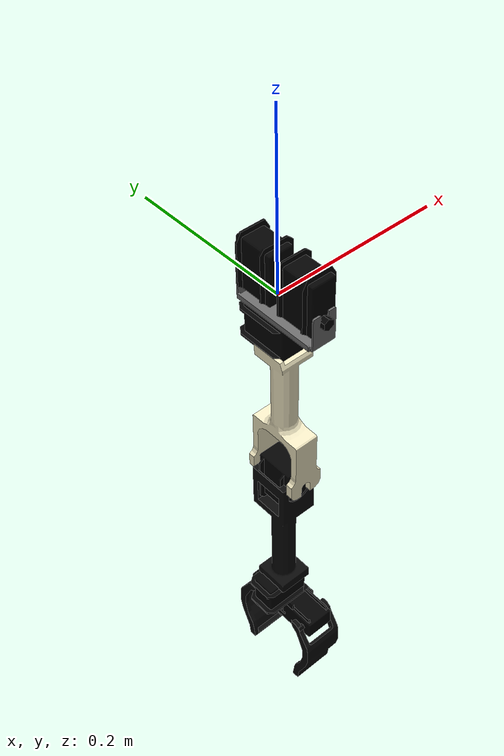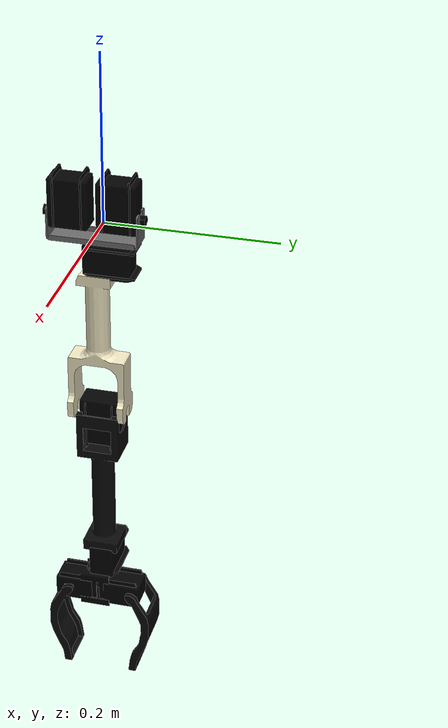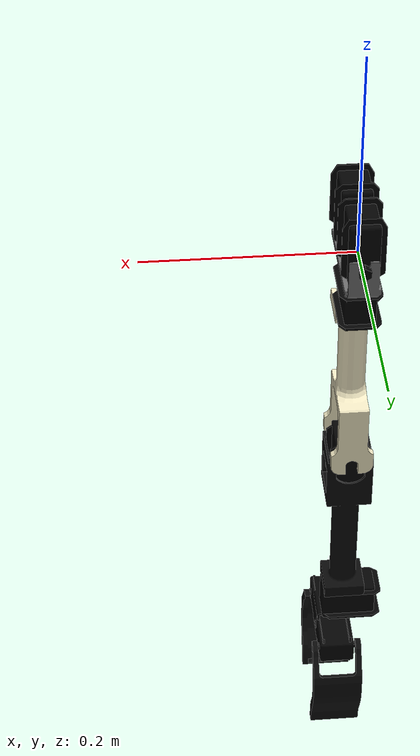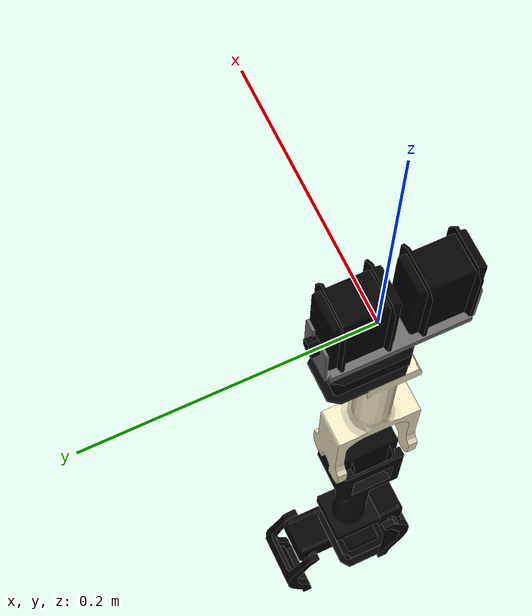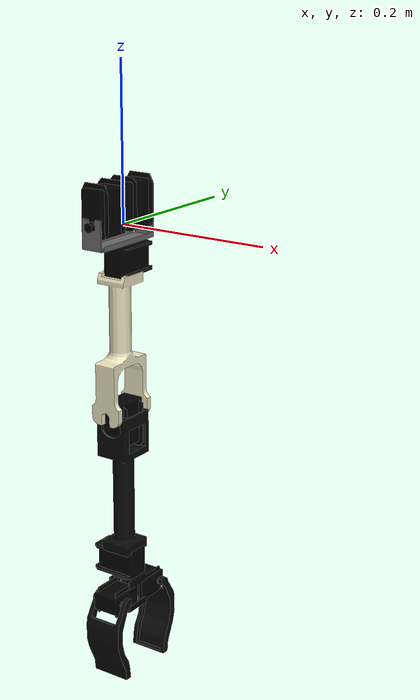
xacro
<?xml version="1.0"?>
<robot name="justina_right_arm" xmlns:xacro="http://www.ros.org/wiki/xacro">
  <!--xacro:include filename="$(find justina_description)/urdf/justina/components/justina_right_arm.gazebo"/-->

  <!-- RIGHT ARM LINKS -->
  <link name="right_shoulder_link">
    <inertial>
      <origin xyz="0 -0.01 0.02" rpy = "0 0 0"/>
      <mass value="0.125"/>
      <inertia ixx="0.0015" ixy="0.0" ixz="0.0" iyy="0.002175" iyz="0.0" izz="0.003075"/>
    </inertial>

    <visual>
      <origin xyz="0 -0.01 0.02" rpy = "0 0 0"/>
      <geometry>
        <mesh filename="package://justina_description/meshes/justina/servos/Servo_Mx106-2_LowPoly.dae" scale="1 1 1"/>
      </geometry>
    </visual>
    <collision>
      <origin xyz="0 -0.01 0.02" rpy = "0 0 0"/>
      <geometry>
        <mesh filename="package://justina_description/meshes/justina/servos/Servo_Mx106-2_LowPoly.dae" scale="1 1 1"/>
      </geometry>
    </collision>
  </link>

  <link name="right_shoulder_frame">
    <inertial>
      <origin xyz="0 -0.01 0.01" rpy = "0 0 -1.5707"/>
      <mass value="0.08146"/>
      <inertia ixx="0.0000813217" ixy="0.0" ixz="0.0" iyy="0.000196" iyz="0.0" izz="0.0001282"/>
    </inertial>

    <visual>
      <origin xyz="0 -0.01 0.0" rpy="0 0 0"/>
      <geometry>
        <mesh filename="package://justina_description/meshes/justina/arm/Shoulder_Frame_LowPoly.dae" scale="1 1 1"/>
      </geometry>
    </visual>
    <collision>
      <origin xyz="0 -0.01 0.0" rpy="0 0 0"/>
      <geometry>
        <mesh filename="package://justina_description/meshes/justina/arm/Shoulder_Frame_LowPoly.dae" scale="1 1 1"/>
      </geometry>
    </collision>
  </link>

  <link name="right_arm">
    <inertial>
      <origin xyz="0 0 0" rpy = "0 0 0"/>
      <mass value="0.155"/>
      <inertia ixx="0.0015" ixy="0.0" ixz="0.0" iyy="0.002175" iyz="0.0" izz="0.003075"/>
    </inertial>

    <visual>
      <origin xyz="0 0 -0.02" rpy="0 0 -1.5707"/>
      <geometry>
        <mesh filename="package://justina_description/meshes/justina/servos/Servo_Mx64_LowPoly.dae" scale="1 1 1"/>
      </geometry>
    </visual>
    <collision>
      <origin xyz="0 0 -0.02" rpy="0 0 -1.5707"/>
      <geometry>
        <mesh filename="package://justina_description/meshes/justina/servos/Servo_Mx64_LowPoly.dae" scale="1 1 1"/>
      </geometry>
    </collision>

    <visual>
      <origin xyz="0 0 -0.216" rpy="0 0 -1.5707"/>
      <geometry>
        <mesh filename="package://justina_description/meshes/justina/arm/Arm_LowPoly.dae" scale="1 1 1"/>
      </geometry>
    </visual>
    <collision>
      <origin xyz="0 0 -0.216" rpy="0 0 -1.5707"/>
      <geometry>
        <mesh filename="package://justina_description/meshes/justina/arm/Arm_LowPoly.dae" scale="1 1 1"/>
      </geometry>
    </collision>
  </link>

  <link name="rigth_forearm">
    <inertial>
      <origin xyz="0 0 0" rpy = "0 0 0"/>
      <mass value="0.155"/>
      <inertia ixx="0.0015" ixy="0.0" ixz="0.0" iyy="0.002175" iyz="0.0" izz="0.003075"/>
    </inertial>

    <visual>
      <origin xyz="0 0 0" rpy="0 0 0"/>
      <geometry>
        <mesh filename="package://justina_description/meshes/justina/servos/Servo_Mx106_LowPoly.dae" scale="1 1 1"/>
      </geometry>
    </visual>
    <collision>
      <origin xyz="0 0 0" rpy="0 0 0"/>
      <geometry>
        <mesh filename="package://justina_description/meshes/justina/servos/Servo_Mx106_LowPoly.dae" scale="1 1 1"/>
      </geometry>
    </collision>

    <visual>
      <origin xyz="0 0 -0.12" rpy="0 0 0"/>
      <geometry>
        <mesh filename="package://justina_description/meshes/justina/arm/Forearm_LowPoly.dae" scale="1 1 1"/>
      </geometry>
    </visual>
    <collision>
      <origin xyz="0 0 -0.12" rpy="0 0 1.5707"/>
      <geometry>
        <mesh filename="package://justina_description/meshes/justina/arm/Forearm_LowPoly.dae" scale="1 1 1"/>
      </geometry>
    </collision>

    <visual>
      <origin xyz="0.009 0.001 -0.21" rpy="0 0 0"/>
      <geometry>
        <mesh filename="package://justina_description/meshes/justina/servos/Servo_Mx64_LowPoly.dae" scale="1 1 1"/>
      </geometry>
    </visual>
    <collision>
      <origin xyz="0.009 0.001 -0.21" rpy="0 0 0"/>
      <geometry>
        <mesh filename="package://justina_description/meshes/justina/servos/Servo_Mx64_LowPoly.dae" scale="1 1 1"/>
      </geometry>
    </collision>
  </link>

  <link name="right_gripper_motors">
    <inertial>
      <origin xyz="0 0 0" rpy = "0 0 0"/>
      <mass value="0.155"/>
      <inertia ixx="0.0015" ixy="0.0" ixz="0.0" iyy="0.002175" iyz="0.0" izz="0.003075"/>
    </inertial>

    <visual>
      <origin xyz="0 -0.004 0" rpy="0 0 0"/>
      <geometry>
        <mesh filename="package://justina_description/meshes/justina/servos/Servo_Mx28-2_LowPoly.dae" scale="1 1 1"/>
      </geometry>
    </visual>
    <collision>
      <origin xyz="0 -0.004 0" rpy="0 0 0"/>
      <geometry>
        <mesh filename="package://justina_description/meshes/justina/servos/Servo_Mx28-2_LowPoly.dae" scale="1 1 1"/>
      </geometry>
    </collision>
  </link>

  <link name="right_jaw_right">
    <inertial>
      <origin xyz="0 0 0" rpy = "0 0 0"/>
      <mass value="0.155"/>
      <inertia ixx="0.0015" ixy="0.0" ixz="0.0" iyy="0.002175" iyz="0.0" izz="0.003075"/>
    </inertial>

    <visual>
      <origin xyz="0 0 0" rpy="0 0 -1.5708"/>
      <geometry>
        <mesh filename="package://justina_description/meshes/justina/arm/Gripper_Clean.dae" scale="1 1 1"/>
      </geometry>
    </visual>
    <collision>
      <origin xyz="0 0 0" rpy="0 0 -1.5708"/>
      <geometry>
        <mesh filename="package://justina_description/meshes/justina/arm/Gripper_Clean.dae" scale="1 1 1"/>
      </geometry>
    </collision>
  </link>

  <link name="right_jaw_left">
    <inertial>
      <origin xyz="0 0 0" rpy = "0 0 0"/>
      <mass value="0.155"/>
      <inertia ixx="0.0015" ixy="0.0" ixz="0.0" iyy="0.002175" iyz="0.0" izz="0.003075"/>
    </inertial>

    <visual>
      <origin xyz="0 0 0" rpy="0 0 1.5708"/>
      <geometry>
        <mesh filename="package://justina_description/meshes/justina/arm/Gripper_Clean.dae" scale="1 1 1"/>
      </geometry>
    </visual>
    <collision>
      <origin xyz="0 0 0" rpy="0 0 1.5708"/>
      <geometry>
        <mesh filename="package://justina_description/meshes/justina/arm/Gripper_Clean.dae" scale="1 1 1"/>
      </geometry>
    </collision>
  </link>

  <!-- RIGHT ARM JOINTS -->
  <joint name="right_torso_shoulder" type="revolute">
    <origin xyz="0 0 0.015" rpy="0 0 0"/>
    <parent link="right_shoulder_link"/>
    <child link="right_shoulder_frame"/>
    <axis xyz="0 -1 0" />
    <dynamics damping ="0.1" />
    <limit effort="16.0" velocity="3.0" lower="-1.7" upper="1.7"/>
  </joint>

  <joint name="right_shoulder_arm_motor" type="revolute">
    <origin xyz="0 -0.009 -0.038" rpy="0 0 0"/>
    <parent link="right_shoulder_frame"/>
    <child link="right_arm"/>
    <axis xyz="0 0 -1" />
    <dynamics damping ="0.1" />
    <limit effort="16.0" velocity="3.0" lower="-1.7" upper="1.7"/>
  </joint>

  <joint name="right_elbow" type="revolute">
    <origin xyz="0 0.002 -0.216" rpy="0 0 0"/>
    <parent link="right_arm"/>
    <child link="rigth_forearm"/>
    <axis xyz="0 -1 0" />
    <dynamics damping ="0.1" />
    <limit effort="16.0" velocity="3.0" lower="-1.7" upper="1.7"/>
  </joint>

  <joint name="right_wrist" type="revolute">
    <origin xyz="0.009 0.001 -0.25" rpy="0 0 0"/>
    <parent link="rigth_forearm"/>
    <child link="right_gripper_motors"/>
    <axis xyz="0 0 -1" />
    <dynamics damping ="0.1" />
    <limit effort="16.0" velocity="3.0" lower="-1.7" upper="1.7"/>
  </joint>

  <joint name="right_jaw_right_joint" type="revolute">
    <origin xyz="0 -0.04 0" rpy="0 0 0"/>
    <parent link="right_gripper_motors"/>
    <child link="right_jaw_right"/>
    <axis xyz="-1 0 0" />
    <dynamics damping ="0.1" />
    <limit effort="16.0" velocity="3.0" lower="-1.7" upper="1.7"/>
  </joint>

  <joint name="right_jaw_left_joint" type="revolute">
    <origin xyz="0 0.04 0" rpy="0 0 0"/>
    <parent link="right_gripper_motors"/>
    <child link="right_jaw_left"/>
    <axis xyz="-1 0 0" />
    <dynamics damping ="0.1" />
    <limit effort="16.0" velocity="3.0" lower="-1.7" upper="1.7"/>
  </joint>
</robot>
